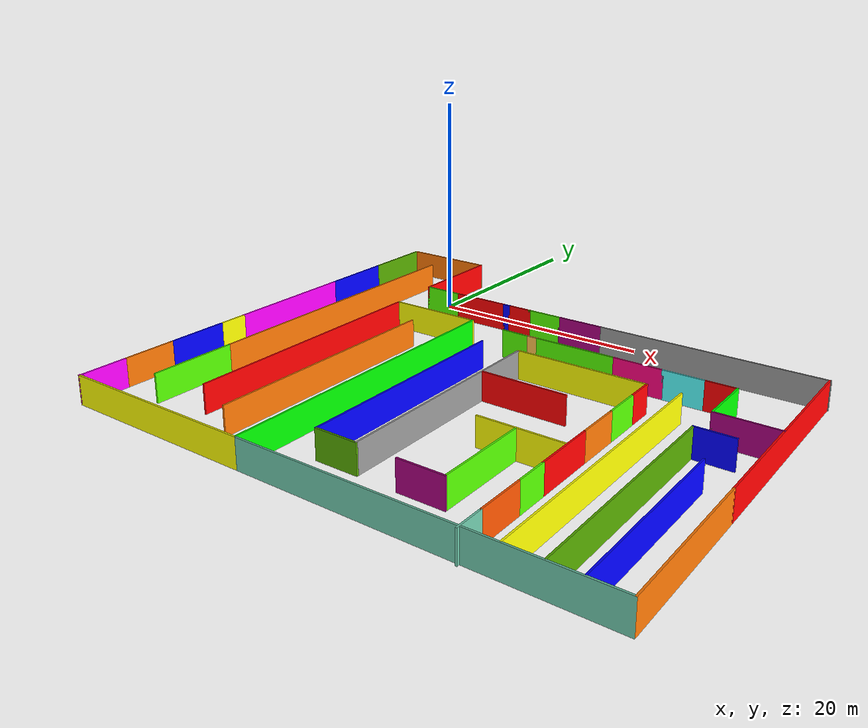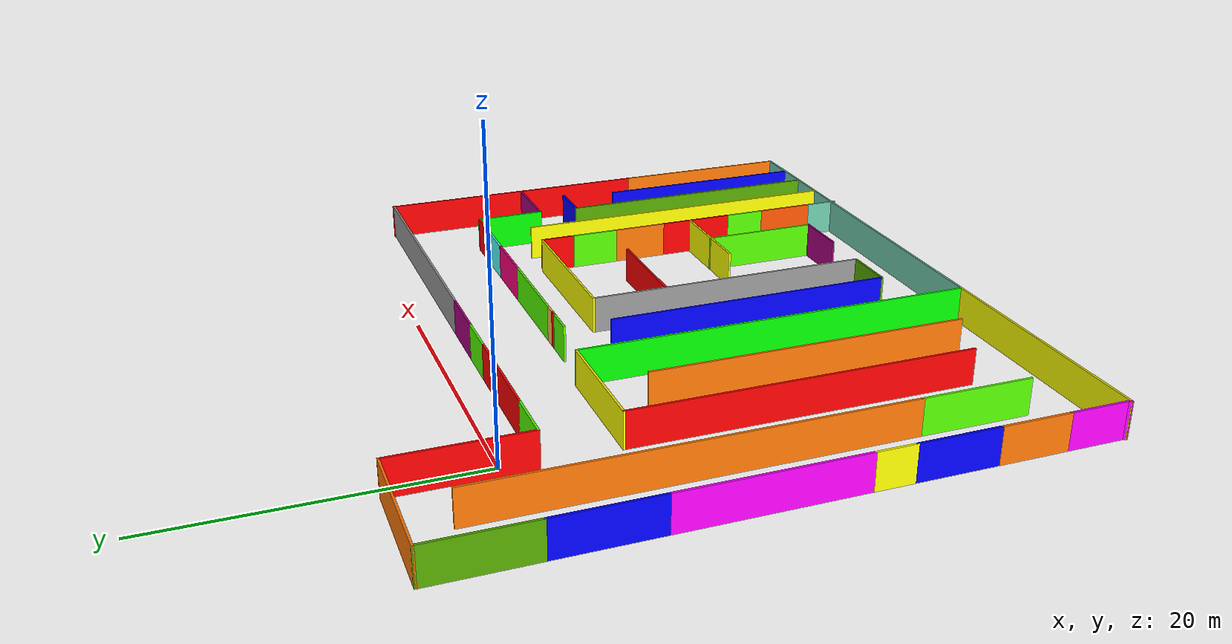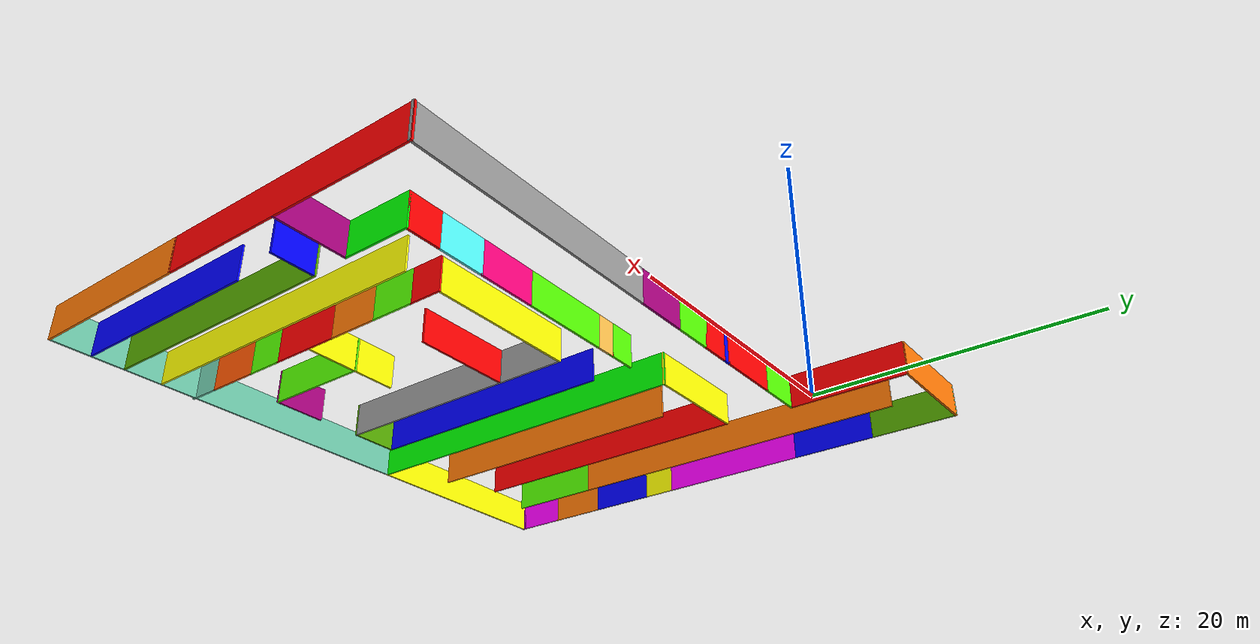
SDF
<?xml version='1.0'?>
<sdf version='1.6'>
  <model name='Indoors_with_RGB_features'>
    <pose frame=''>13.8674 -14.1627 0 0 -0 0</pose>
    <link name='Wall_101'>
      <collision name='Wall_101_Collision'>
        <geometry>
          <box>
            <size>2.5 0.15 2.5</size>
          </box>
        </geometry>
        <pose frame=''>0 0 1.25 0 -0 0</pose>
      </collision>
      <visual name='Wall_101_Visual'>
        <pose frame=''>0 0 1.25 0 -0 0</pose>
        <geometry>
          <box>
            <size>2.5 0.15 2.5</size>
          </box>
        </geometry>
        <material>
          <script>
            <uri>file://media/materials/scripts/gazebo.material</uri>
            <name>Gazebo/Grey</name>
          </script>
          <ambient>1 0 0 1</ambient>
        </material>
      </visual>
      <pose frame=''>12.4319 2.08101 0 0 0 -1.5708</pose>
    </link>
    <link name='Wall_102'>
      <collision name='Wall_102_Collision'>
        <geometry>
          <box>
            <size>3.5 0.15 2.5</size>
          </box>
        </geometry>
        <pose frame=''>0 0 1.25 0 -0 0</pose>
      </collision>
      <visual name='Wall_102_Visual'>
        <pose frame=''>0 0 1.25 0 -0 0</pose>
        <geometry>
          <box>
            <size>3.5 0.15 2.5</size>
          </box>
        </geometry>
        <material>
          <script>
            <uri>file://media/materials/scripts/gazebo.material</uri>
            <name>Gazebo/Grey</name>
          </script>
          <ambient>0.333333 1 0 1</ambient>
        </material>
      </visual>
      <pose frame=''>12.4319 -0.76899 0 0 0 -1.5708</pose>
    </link>
    <link name='Wall_103'>
      <collision name='Wall_103_Collision'>
        <geometry>
          <box>
            <size>4 0.15 2.5</size>
          </box>
        </geometry>
        <pose frame=''>0 0 1.25 0 -0 0</pose>
      </collision>
      <visual name='Wall_103_Visual'>
        <pose frame=''>0 0 1.25 0 -0 0</pose>
        <geometry>
          <box>
            <size>4 0.15 2.5</size>
          </box>
        </geometry>
        <material>
          <script>
            <uri>file://media/materials/scripts/gazebo.material</uri>
            <name>Gazebo/Grey</name>
          </script>
          <ambient>0.996078 0.47451 0.0196078 1</ambient>
        </material>
      </visual>
      <pose frame=''>12.4319 -4.36899 0 0 0 -1.5708</pose>
    </link>
    <link name='Wall_104'>
      <collision name='Wall_104_Collision'>
        <geometry>
          <box>
            <size>5.5 0.15 2.5</size>
          </box>
        </geometry>
        <pose frame=''>0 0 1.25 0 -0 0</pose>
      </collision>
      <visual name='Wall_104_Visual'>
        <pose frame=''>0 0 1.25 0 -0 0</pose>
        <geometry>
          <box>
            <size>5.5 0.15 2.5</size>
          </box>
        </geometry>
        <material>
          <script>
            <uri>file://media/materials/scripts/gazebo.material</uri>
            <name>Gazebo/Grey</name>
          </script>
          <ambient>1 0 0 1</ambient>
        </material>
      </visual>
      <pose frame=''>12.4319 -8.96899 0 0 0 -1.5708</pose>
    </link>
    <link name='Wall_105'>
      <collision name='Wall_105_Collision'>
        <geometry>
          <box>
            <size>3 0.15 2.5</size>
          </box>
        </geometry>
        <pose frame=''>0 0 1.25 0 -0 0</pose>
      </collision>
      <visual name='Wall_105_Visual'>
        <pose frame=''>0 0 1.25 0 -0 0</pose>
        <geometry>
          <box>
            <size>3 0.15 2.5</size>
          </box>
        </geometry>
        <material>
          <script>
            <uri>file://media/materials/scripts/gazebo.material</uri>
            <name>Gazebo/Grey</name>
          </script>
          <ambient>0.333333 1 0 1</ambient>
        </material>
      </visual>
      <pose frame=''>12.4319 -13.069 0 0 0 -1.5708</pose>
    </link>
    <link name='Wall_106'>
      <collision name='Wall_106_Collision'>
        <geometry>
          <box>
            <size>4.25 0.15 2.5</size>
          </box>
        </geometry>
        <pose frame=''>0 0 1.25 0 -0 0</pose>
      </collision>
      <visual name='Wall_106_Visual'>
        <pose frame=''>0 0 1.25 0 -0 0</pose>
        <geometry>
          <box>
            <size>4.25 0.15 2.5</size>
          </box>
        </geometry>
        <material>
          <script>
            <uri>file://media/materials/scripts/gazebo.material</uri>
            <name>Gazebo/Grey</name>
          </script>
          <ambient>1 0.333333 0 1</ambient>
        </material>
      </visual>
      <pose frame=''>12.4319 -16.544 0 0 0 -1.5708</pose>
    </link>
    <link name='Wall_107'>
      <collision name='Wall_107_Collision'>
        <geometry>
          <box>
            <size>2.5 0.15 2.5</size>
          </box>
        </geometry>
        <pose frame=''>0 0 1.25 0 -0 0</pose>
      </collision>
      <visual name='Wall_107_Visual'>
        <pose frame=''>0 0 1.25 0 -0 0</pose>
        <geometry>
          <box>
            <size>2.5 0.15 2.5</size>
          </box>
        </geometry>
        <material>
          <script>
            <uri>file://media/materials/scripts/gazebo.material</uri>
            <name>Gazebo/Grey</name>
          </script>
          <ambient>0.435294 0.796078 0.67451 1</ambient>
        </material>
      </visual>
      <pose frame=''>12.4319 -19.769 0 0 0 -1.5708</pose>
    </link>
    <link name='Wall_25'>
      <collision name='Wall_25_Collision'>
        <geometry>
          <box>
            <size>19.5 0.15 2.5</size>
          </box>
        </geometry>
        <pose frame=''>0 0 1.25 0 -0 0</pose>
      </collision>
      <visual name='Wall_25_Visual'>
        <pose frame=''>0 0 1.25 0 -0 0</pose>
        <geometry>
          <box>
            <size>19.5 0.15 2.5</size>
          </box>
        </geometry>
        <material>
          <script>
            <uri>file://media/materials/scripts/gazebo.material</uri>
            <name>Gazebo/Grey</name>
          </script>
          <ambient>1 1 1 1</ambient>
        </material>
      </visual>
      <pose frame=''>13.6831 12.0192 0 0 -0 0</pose>
    </link>
    <link name='Wall_26'>
      <collision name='Wall_26_Collision'>
        <geometry>
          <box>
            <size>19.8553 0.15 2.5</size>
          </box>
        </geometry>
        <pose frame=''>0 0 1.25 0 -0 0</pose>
      </collision>
      <visual name='Wall_26_Visual'>
        <pose frame=''>0 0 1.25 0 -0 0</pose>
        <geometry>
          <box>
            <size>19.8553 0.15 2.5</size>
          </box>
        </geometry>
        <material>
          <script>
            <uri>file://media/materials/scripts/gazebo.material</uri>
            <name>Gazebo/Grey</name>
          </script>
          <ambient>1 0 0 1</ambient>
        </material>
      </visual>
      <pose frame=''>23.3318 2.21922 0 0 0 -1.56813</pose>
    </link>
    <link name='Wall_27'>
      <collision name='Wall_27_Collision'>
        <geometry>
          <box>
            <size>13.25 0.15 2.5</size>
          </box>
        </geometry>
        <pose frame=''>0 0 1.25 0 -0 0</pose>
      </collision>
      <visual name='Wall_27_Visual'>
        <pose frame=''>0 0 1.25 0 -0 0</pose>
        <geometry>
          <box>
            <size>13.25 0.15 2.5</size>
          </box>
        </geometry>
        <material>
          <script>
            <uri>file://media/materials/scripts/gazebo.material</uri>
            <name>Gazebo/Grey</name>
          </script>
          <ambient>0.996078 0.47451 0.0196078 1</ambient>
        </material>
      </visual>
      <pose frame=''>23.3581 -14.1834 0 0 0 -1.5708</pose>
    </link>
    <link name='Wall_28'>
      <collision name='Wall_28_Collision'>
        <geometry>
          <box>
            <size>29.5 0.15 2.5</size>
          </box>
        </geometry>
        <pose frame=''>0 0 1.25 0 -0 0</pose>
      </collision>
      <visual name='Wall_28_Visual'>
        <pose frame=''>0 0 1.25 0 -0 0</pose>
        <geometry>
          <box>
            <size>29.5 0.15 2.5</size>
          </box>
        </geometry>
        <material>
          <script>
            <uri>file://media/materials/scripts/gazebo.material</uri>
            <name>Gazebo/Grey</name>
          </script>
          <ambient>0.435294 0.796078 0.67451 1</ambient>
        </material>
      </visual>
      <pose frame=''>8.68306 -20.7334 0 0 -0 3.14159</pose>
    </link>
    <link name='Wall_29'>
      <collision name='Wall_29_Collision'>
        <geometry>
          <box>
            <size>27.75 0.15 2.5</size>
          </box>
        </geometry>
        <pose frame=''>0 0 1.25 0 -0 0</pose>
      </collision>
      <visual name='Wall_29_Visual'>
        <pose frame=''>0 0 1.25 0 -0 0</pose>
        <geometry>
          <box>
            <size>27.75 0.15 2.5</size>
          </box>
        </geometry>
        <material>
          <script>
            <uri>file://media/materials/scripts/gazebo.material</uri>
            <name>Gazebo/Grey</name>
          </script>
          <ambient>0 1 0 1</ambient>
        </material>
      </visual>
      <pose frame=''>-5.99194 -6.93338 0 0 -0 1.5708</pose>
    </link>
    <link name='Wall_31'>
      <collision name='Wall_31_Collision'>
        <geometry>
          <box>
            <size>17.5 0.15 2.5</size>
          </box>
        </geometry>
        <pose frame=''>0 0 1.25 0 -0 0</pose>
      </collision>
      <visual name='Wall_31_Visual'>
        <pose frame=''>0 0 1.25 0 -0 0</pose>
        <geometry>
          <box>
            <size>17.5 0.15 2.5</size>
          </box>
        </geometry>
        <material>
          <script>
            <uri>file://media/materials/scripts/gazebo.material</uri>
            <name>Gazebo/Grey</name>
          </script>
          <ambient>1 1 0 1</ambient>
        </material>
      </visual>
      <pose frame=''>-14.6669 -20.7334 0 0 -0 3.14159</pose>
    </link>
    <link name='Wall_33'>
      <collision name='Wall_33_Collision'>
        <geometry>
          <box>
            <size>8.69202 0.15 2.5</size>
          </box>
        </geometry>
        <pose frame=''>0 0 1.25 0 -0 0</pose>
      </collision>
      <visual name='Wall_33_Visual'>
        <pose frame=''>0 0 1.25 0 -0 0</pose>
        <geometry>
          <box>
            <size>8.69202 0.15 2.5</size>
          </box>
        </geometry>
        <material>
          <script>
            <uri>file://media/materials/scripts/gazebo.material</uri>
            <name>Gazebo/Grey</name>
          </script>
          <ambient>0.996078 0.47451 0.0196078 1</ambient>
        </material>
      </visual>
      <pose frame=''>-19.0128 20.905 0 0 0 -0.008979</pose>
    </link>
    <link name='Wall_34'>
      <collision name='Wall_34_Collision'>
        <geometry>
          <box>
            <size>9 0.15 2.5</size>
          </box>
        </geometry>
        <pose frame=''>0 0 1.25 0 -0 0</pose>
      </collision>
      <visual name='Wall_34_Visual'>
        <pose frame=''>0 0 1.25 0 -0 0</pose>
        <geometry>
          <box>
            <size>9 0.15 2.5</size>
          </box>
        </geometry>
        <material>
          <script>
            <uri>file://media/materials/scripts/gazebo.material</uri>
            <name>Gazebo/Grey</name>
          </script>
          <ambient>1 0 0 1</ambient>
        </material>
      </visual>
      <pose frame=''>-14.7419 16.4416 0 0 0 -1.5708</pose>
    </link>
    <link name='Wall_38'>
      <collision name='Wall_38_Collision'>
        <geometry>
          <box>
            <size>27.75 0.15 2.5</size>
          </box>
        </geometry>
        <pose frame=''>0 0 1.25 0 -0 0</pose>
      </collision>
      <visual name='Wall_38_Visual'>
        <pose frame=''>0 0 1.25 0 -0 0</pose>
        <geometry>
          <box>
            <size>27.75 0.15 2.5</size>
          </box>
        </geometry>
        <material>
          <script>
            <uri>file://media/materials/scripts/gazebo.material</uri>
            <name>Gazebo/Grey</name>
          </script>
          <ambient>0.996078 0.47451 0.0196078 1</ambient>
        </material>
      </visual>
      <pose frame=''>-18.8987 4.04046 0 0 0 -1.5708</pose>
    </link>
    <link name='Wall_40'>
      <collision name='Wall_40_Collision'>
        <geometry>
          <box>
            <size>8.5 0.15 2.5</size>
          </box>
        </geometry>
        <pose frame=''>0 0 1.25 0 -0 0</pose>
      </collision>
      <visual name='Wall_40_Visual'>
        <pose frame=''>0 0 1.25 0 -0 0</pose>
        <geometry>
          <box>
            <size>8.5 0.15 2.5</size>
          </box>
        </geometry>
        <material>
          <script>
            <uri>file://media/materials/scripts/gazebo.material</uri>
            <name>Gazebo/Grey</name>
          </script>
          <ambient>1 1 0 1</ambient>
        </material>
      </visual>
      <pose frame=''>-10.1669 6.86662 0 0 -0 3.14159</pose>
    </link>
    <link name='Wall_42'>
      <collision name='Wall_42_Collision'>
        <geometry>
          <box>
            <size>23.25 0.15 2.5</size>
          </box>
        </geometry>
        <pose frame=''>0 0 1.25 0 -0 0</pose>
      </collision>
      <visual name='Wall_42_Visual'>
        <pose frame=''>0 0 1.25 0 -0 0</pose>
        <geometry>
          <box>
            <size>23.25 0.15 2.5</size>
          </box>
        </geometry>
        <material>
          <script>
            <uri>file://media/materials/scripts/gazebo.material</uri>
            <name>Gazebo/Grey</name>
          </script>
          <ambient>1 0 0 1</ambient>
        </material>
      </visual>
      <pose frame=''>-14.3419 -4.68338 0 0 0 -1.5708</pose>
    </link>
    <link name='Wall_44'>
      <collision name='Wall_44_Collision'>
        <geometry>
          <box>
            <size>21.75 0.15 2.5</size>
          </box>
        </geometry>
        <pose frame=''>0 0 1.25 0 -0 0</pose>
      </collision>
      <visual name='Wall_44_Visual'>
        <pose frame=''>0 0 1.25 0 -0 0</pose>
        <geometry>
          <box>
            <size>21.75 0.15 2.5</size>
          </box>
        </geometry>
        <material>
          <script>
            <uri>file://media/materials/scripts/gazebo.material</uri>
            <name>Gazebo/Grey</name>
          </script>
          <ambient>0.996078 0.47451 0.0196078 1</ambient>
        </material>
      </visual>
      <pose frame=''>-10.3127 -7.06583 0 0 0 -1.5708</pose>
    </link>
    <link name='Wall_46'>
      <collision name='Wall_46_Collision'>
        <geometry>
          <box>
            <size>7.5 0.15 2.5</size>
          </box>
        </geometry>
        <pose frame=''>0 0 1.25 0 -0 0</pose>
      </collision>
      <visual name='Wall_46_Visual'>
        <pose frame=''>0 0 1.25 0 -0 0</pose>
        <geometry>
          <box>
            <size>7.5 0.15 2.5</size>
          </box>
        </geometry>
        <material>
          <script>
            <uri>file://media/materials/scripts/gazebo.material</uri>
            <name>Gazebo/Grey</name>
          </script>
          <ambient>0.333333 1 0 1</ambient>
        </material>
      </visual>
      <pose frame=''>-18.8987 -13.4345 0 0 0 -1.5708</pose>
    </link>
    <link name='Wall_49'>
      <collision name='Wall_49_Collision'>
        <geometry>
          <box>
            <size>5 0.15 2.5</size>
          </box>
        </geometry>
        <pose frame=''>0 0 1.25 0 -0 0</pose>
      </collision>
      <visual name='Wall_49_Visual'>
        <pose frame=''>0 0 1.25 0 -0 0</pose>
        <geometry>
          <box>
            <size>5 0.15 2.5</size>
          </box>
        </geometry>
        <material>
          <script>
            <uri>file://media/materials/scripts/gazebo.material</uri>
            <name>Gazebo/Grey</name>
          </script>
          <ambient>0 1 0 1</ambient>
        </material>
      </visual>
      <pose frame=''>18.2294 4.06483 0 0 0 -1.5708</pose>
    </link>
    <link name='Wall_50'>
      <collision name='Wall_50_Collision'>
        <geometry>
          <box>
            <size>5.25 0.15 2.5</size>
          </box>
        </geometry>
        <pose frame=''>0 0 1.25 0 -0 0</pose>
      </collision>
      <visual name='Wall_50_Visual'>
        <pose frame=''>0 0 1.25 0 -0 0</pose>
        <geometry>
          <box>
            <size>5.25 0.15 2.5</size>
          </box>
        </geometry>
        <material>
          <script>
            <uri>file://media/materials/scripts/gazebo.material</uri>
            <name>Gazebo/Grey</name>
          </script>
          <ambient>0.666667 0 0.498039 1</ambient>
        </material>
      </visual>
      <pose frame=''>20.7794 1.63983 0 0 -0 0</pose>
    </link>
    <link name='Wall_53'>
      <collision name='Wall_53_Collision'>
        <geometry>
          <box>
            <size>11.5 0.15 2.5</size>
          </box>
        </geometry>
        <pose frame=''>0 0 1.25 0 -0 0</pose>
      </collision>
      <visual name='Wall_53_Visual'>
        <pose frame=''>0 0 1.25 0 -0 0</pose>
        <geometry>
          <box>
            <size>11.5 0.15 2.5</size>
          </box>
        </geometry>
        <material>
          <script>
            <uri>file://media/materials/scripts/gazebo.material</uri>
            <name>Gazebo/Grey</name>
          </script>
          <ambient>1 1 0 1</ambient>
        </material>
      </visual>
      <pose frame=''>6.75688 3.25601 0 0 -0 3.14159</pose>
    </link>
    <link name='Wall_54'>
      <collision name='Wall_54_Collision'>
        <geometry>
          <box>
            <size>20 0.15 2.5</size>
          </box>
        </geometry>
        <pose frame=''>0 0 1.25 0 -0 0</pose>
      </collision>
      <visual name='Wall_54_Visual'>
        <pose frame=''>0 0 1.25 0 -0 0</pose>
        <geometry>
          <box>
            <size>20 0.15 2.5</size>
          </box>
        </geometry>
        <material>
          <script>
            <uri>file://media/materials/scripts/gazebo.material</uri>
            <name>Gazebo/Grey</name>
          </script>
          <ambient>1 1 1 1</ambient>
        </material>
      </visual>
      <pose frame=''>1.08188 -6.66899 0 0 0 -1.5708</pose>
    </link>
    <link name='Wall_55'>
      <collision name='Wall_55_Collision'>
        <geometry>
          <box>
            <size>3.75 0.15 2.5</size>
          </box>
        </geometry>
        <pose frame=''>0 0 1.25 0 -0 0</pose>
      </collision>
      <visual name='Wall_55_Visual'>
        <pose frame=''>0 0 1.25 0 -0 0</pose>
        <geometry>
          <box>
            <size>3.75 0.15 2.5</size>
          </box>
        </geometry>
        <material>
          <script>
            <uri>file://media/materials/scripts/gazebo.material</uri>
            <name>Gazebo/Grey</name>
          </script>
          <ambient>0.333333 0.666667 0 1</ambient>
        </material>
      </visual>
      <pose frame=''>-0.718117 -16.594 0 0 -0 3.14159</pose>
    </link>
    <link name='Wall_56'>
      <collision name='Wall_56_Collision'>
        <geometry>
          <box>
            <size>20 0.15 2.5</size>
          </box>
        </geometry>
        <pose frame=''>0 0 1.25 0 -0 0</pose>
      </collision>
      <visual name='Wall_56_Visual'>
        <pose frame=''>0 0 1.25 0 -0 0</pose>
        <geometry>
          <box>
            <size>20 0.15 2.5</size>
          </box>
        </geometry>
        <material>
          <script>
            <uri>file://media/materials/scripts/gazebo.material</uri>
            <name>Gazebo/Grey</name>
          </script>
          <ambient>0 0 1 1</ambient>
        </material>
      </visual>
      <pose frame=''>-2.51812 -6.66899 0 0 -0 1.5708</pose>
    </link>
    <link name='Wall_58'>
      <collision name='Wall_58_Collision'>
        <geometry>
          <box>
            <size>7.5 0.15 2.5</size>
          </box>
        </geometry>
        <pose frame=''>0 0 1.25 0 -0 0</pose>
      </collision>
      <visual name='Wall_58_Visual'>
        <pose frame=''>0 0 1.25 0 -0 0</pose>
        <geometry>
          <box>
            <size>7.5 0.15 2.5</size>
          </box>
        </geometry>
        <material>
          <script>
            <uri>file://media/materials/scripts/gazebo.material</uri>
            <name>Gazebo/Grey</name>
          </script>
          <ambient>1 0 0 1</ambient>
        </material>
      </visual>
      <pose frame=''>4.83082 -1.98534 0 0 -0 0</pose>
    </link>
    <link name='Wall_61'>
      <collision name='Wall_61_Collision'>
        <geometry>
          <box>
            <size>7.25 0.15 2.5</size>
          </box>
        </geometry>
        <pose frame=''>0 0 1.25 0 -0 0</pose>
      </collision>
      <visual name='Wall_61_Visual'>
        <pose frame=''>0 0 1.25 0 -0 0</pose>
        <geometry>
          <box>
            <size>7.25 0.15 2.5</size>
          </box>
        </geometry>
        <material>
          <script>
            <uri>file://media/materials/scripts/gazebo.material</uri>
            <name>Gazebo/Grey</name>
          </script>
          <ambient>1 1 0 1</ambient>
        </material>
      </visual>
      <pose frame=''>8.75327 -8.5764 0 0 -0 3.14159</pose>
    </link>
    <link name='Wall_63'>
      <collision name='Wall_63_Collision'>
        <geometry>
          <box>
            <size>8.25 0.15 2.5</size>
          </box>
        </geometry>
        <pose frame=''>0 0 1.25 0 -0 0</pose>
      </collision>
      <visual name='Wall_63_Visual'>
        <pose frame=''>0 0 1.25 0 -0 0</pose>
        <geometry>
          <box>
            <size>8.25 0.15 2.5</size>
          </box>
        </geometry>
        <material>
          <script>
            <uri>file://media/materials/scripts/gazebo.material</uri>
            <name>Gazebo/Grey</name>
          </script>
          <ambient>0.333333 1 0 1</ambient>
        </material>
      </visual>
      <pose frame=''>8.44334 -12.6029 0 0 0 -1.5708</pose>
    </link>
    <link name='Wall_65'>
      <collision name='Wall_65_Collision'>
        <geometry>
          <box>
            <size>24 0.15 2.5</size>
          </box>
        </geometry>
        <pose frame=''>0 0 1.25 0 -0 0</pose>
      </collision>
      <visual name='Wall_65_Visual'>
        <pose frame=''>0 0 1.25 0 -0 0</pose>
        <geometry>
          <box>
            <size>24 0.15 2.5</size>
          </box>
        </geometry>
        <material>
          <script>
            <uri>file://media/materials/scripts/gazebo.material</uri>
            <name>Gazebo/Grey</name>
          </script>
          <ambient>1 1 0 1</ambient>
        </material>
      </visual>
      <pose frame=''>15.2031 -8.69435 0 0 -0 1.5708</pose>
    </link>
    <link name='Wall_67'>
      <collision name='Wall_67_Collision'>
        <geometry>
          <box>
            <size>4 0.15 2.5</size>
          </box>
        </geometry>
        <pose frame=''>0 0 1.25 0 -0 0</pose>
      </collision>
      <visual name='Wall_67_Visual'>
        <pose frame=''>0 0 1.25 0 -0 0</pose>
        <geometry>
          <box>
            <size>4 0.15 2.5</size>
          </box>
        </geometry>
        <material>
          <script>
            <uri>file://media/materials/scripts/gazebo.material</uri>
            <name>Gazebo/Grey</name>
          </script>
          <ambient>0.666667 0 0.498039 1</ambient>
        </material>
      </visual>
      <pose frame=''>6.51834 -16.6529 0 0 -0 3.14159</pose>
    </link>
    <link name='Wall_69'>
      <collision name='Wall_69_Collision'>
        <geometry>
          <box>
            <size>19.5 0.15 2.5</size>
          </box>
        </geometry>
        <pose frame=''>0 0 1.25 0 -0 0</pose>
      </collision>
      <visual name='Wall_69_Visual'>
        <pose frame=''>0 0 1.25 0 -0 0</pose>
        <geometry>
          <box>
            <size>19.5 0.15 2.5</size>
          </box>
        </geometry>
        <material>
          <script>
            <uri>file://media/materials/scripts/gazebo.material</uri>
            <name>Gazebo/Grey</name>
          </script>
          <ambient>0.333333 0.666667 0 1</ambient>
        </material>
      </visual>
      <pose frame=''>18.0362 -10.9443 0 0 -0 1.5708</pose>
    </link>
    <link name='Wall_70'>
      <collision name='Wall_70_Collision'>
        <geometry>
          <box>
            <size>3.25 0.15 2.5</size>
          </box>
        </geometry>
        <pose frame=''>0 0 1.25 0 -0 0</pose>
      </collision>
      <visual name='Wall_70_Visual'>
        <pose frame=''>0 0 1.25 0 -0 0</pose>
        <geometry>
          <box>
            <size>3.25 0.15 2.5</size>
          </box>
        </geometry>
        <material>
          <script>
            <uri>file://media/materials/scripts/gazebo.material</uri>
            <name>Gazebo/Grey</name>
          </script>
          <ambient>0 0 1 1</ambient>
        </material>
      </visual>
      <pose frame=''>19.5862 -1.26935 0 0 -0 0</pose>
    </link>
    <link name='Wall_72'>
      <collision name='Wall_72_Collision'>
        <geometry>
          <box>
            <size>15.5 0.15 2.5</size>
          </box>
        </geometry>
        <pose frame=''>0 0 1.25 0 -0 0</pose>
      </collision>
      <visual name='Wall_72_Visual'>
        <pose frame=''>0 0 1.25 0 -0 0</pose>
        <geometry>
          <box>
            <size>15.5 0.15 2.5</size>
          </box>
        </geometry>
        <material>
          <script>
            <uri>file://media/materials/scripts/gazebo.material</uri>
            <name>Gazebo/Grey</name>
          </script>
          <ambient>0 0 1 1</ambient>
        </material>
      </visual>
      <pose frame=''>20.4646 -12.9443 0 0 -0 1.5708</pose>
    </link>
    <link name='Wall_74'>
      <collision name='Wall_74_Collision'>
        <geometry>
          <box>
            <size>2.5 0.15 2.5</size>
          </box>
        </geometry>
        <pose frame=''>0 0 1.25 0 -0 0</pose>
      </collision>
      <visual name='Wall_74_Visual'>
        <pose frame=''>0 0 1.25 0 -0 0</pose>
        <geometry>
          <box>
            <size>2.5 0.15 2.5</size>
          </box>
        </geometry>
        <material>
          <script>
            <uri>file://media/materials/scripts/gazebo.material</uri>
            <name>Gazebo/Grey</name>
          </script>
          <ambient>0.333333 1 0 1</ambient>
        </material>
      </visual>
      <pose frame=''>-1.29556 6.48983 0 0 -0 3.14159</pose>
    </link>
    <link name='Wall_76'>
      <collision name='Wall_76_Collision'>
        <geometry>
          <box>
            <size>6.75 0.15 2.5</size>
          </box>
        </geometry>
        <pose frame=''>0 0 1.25 0 -0 0</pose>
      </collision>
      <visual name='Wall_76_Visual'>
        <pose frame=''>0 0 1.25 0 -0 0</pose>
        <geometry>
          <box>
            <size>6.75 0.15 2.5</size>
          </box>
        </geometry>
        <material>
          <script>
            <uri>file://media/materials/scripts/gazebo.material</uri>
            <name>Gazebo/Grey</name>
          </script>
          <ambient>0.333333 0.666667 0 1</ambient>
        </material>
      </visual>
      <pose frame=''>-23.2836 17.6433 0 0 0 -1.5708</pose>
    </link>
    <link name='Wall_77'>
      <collision name='Wall_77_Collision'>
        <geometry>
          <box>
            <size>6.75 0.15 2.5</size>
          </box>
        </geometry>
        <pose frame=''>0 0 1.25 0 -0 0</pose>
      </collision>
      <visual name='Wall_77_Visual'>
        <pose frame=''>0 0 1.25 0 -0 0</pose>
        <geometry>
          <box>
            <size>6.75 0.15 2.5</size>
          </box>
        </geometry>
        <material>
          <script>
            <uri>file://media/materials/scripts/gazebo.material</uri>
            <name>Gazebo/Grey</name>
          </script>
          <ambient>0 0 1 1</ambient>
        </material>
      </visual>
      <pose frame=''>-23.2836 11.0433 0 0 0 -1.5708</pose>
    </link>
    <link name='Wall_78'>
      <collision name='Wall_78_Collision'>
        <geometry>
          <box>
            <size>12 0.15 2.5</size>
          </box>
        </geometry>
        <pose frame=''>0 0 1.25 0 -0 0</pose>
      </collision>
      <visual name='Wall_78_Visual'>
        <pose frame=''>0 0 1.25 0 -0 0</pose>
        <geometry>
          <box>
            <size>12 0.15 2.5</size>
          </box>
        </geometry>
        <material>
          <script>
            <uri>file://media/materials/scripts/gazebo.material</uri>
            <name>Gazebo/Grey</name>
          </script>
          <ambient>1 0 1 1</ambient>
        </material>
      </visual>
      <pose frame=''>-23.2836 1.81832 0 0 0 -1.5708</pose>
    </link>
    <link name='Wall_79'>
      <collision name='Wall_79_Collision'>
        <geometry>
          <box>
            <size>2.75 0.15 2.5</size>
          </box>
        </geometry>
        <pose frame=''>0 0 1.25 0 -0 0</pose>
      </collision>
      <visual name='Wall_79_Visual'>
        <pose frame=''>0 0 1.25 0 -0 0</pose>
        <geometry>
          <box>
            <size>2.75 0.15 2.5</size>
          </box>
        </geometry>
        <material>
          <script>
            <uri>file://media/materials/scripts/gazebo.material</uri>
            <name>Gazebo/Grey</name>
          </script>
          <ambient>1 1 0 1</ambient>
        </material>
      </visual>
      <pose frame=''>-23.2836 -5.40668 0 0 0 -1.5708</pose>
    </link>
    <link name='Wall_80'>
      <collision name='Wall_80_Collision'>
        <geometry>
          <box>
            <size>5.5 0.15 2.5</size>
          </box>
        </geometry>
        <pose frame=''>0 0 1.25 0 -0 0</pose>
      </collision>
      <visual name='Wall_80_Visual'>
        <pose frame=''>0 0 1.25 0 -0 0</pose>
        <geometry>
          <box>
            <size>5.5 0.15 2.5</size>
          </box>
        </geometry>
        <material>
          <script>
            <uri>file://media/materials/scripts/gazebo.material</uri>
            <name>Gazebo/Grey</name>
          </script>
          <ambient>0 0 1 1</ambient>
        </material>
      </visual>
      <pose frame=''>-23.2836 -9.38168 0 0 0 -1.5708</pose>
    </link>
    <link name='Wall_81'>
      <collision name='Wall_81_Collision'>
        <geometry>
          <box>
            <size>4.75 0.15 2.5</size>
          </box>
        </geometry>
        <pose frame=''>0 0 1.25 0 -0 0</pose>
      </collision>
      <visual name='Wall_81_Visual'>
        <pose frame=''>0 0 1.25 0 -0 0</pose>
        <geometry>
          <box>
            <size>4.75 0.15 2.5</size>
          </box>
        </geometry>
        <material>
          <script>
            <uri>file://media/materials/scripts/gazebo.material</uri>
            <name>Gazebo/Grey</name>
          </script>
          <ambient>0.996078 0.47451 0.0196078 1</ambient>
        </material>
      </visual>
      <pose frame=''>-23.2836 -14.3567 0 0 0 -1.5708</pose>
    </link>
    <link name='Wall_82'>
      <collision name='Wall_82_Collision'>
        <geometry>
          <box>
            <size>4 0.15 2.5</size>
          </box>
        </geometry>
        <pose frame=''>0 0 1.25 0 -0 0</pose>
      </collision>
      <visual name='Wall_82_Visual'>
        <pose frame=''>0 0 1.25 0 -0 0</pose>
        <geometry>
          <box>
            <size>4 0.15 2.5</size>
          </box>
        </geometry>
        <material>
          <script>
            <uri>file://media/materials/scripts/gazebo.material</uri>
            <name>Gazebo/Grey</name>
          </script>
          <ambient>1 0 1 1</ambient>
        </material>
      </visual>
      <pose frame=''>-23.2836 -18.5817 0 0 0 -1.5708</pose>
    </link>
    <link name='Wall_83'>
      <collision name='Wall_83_Collision'>
        <geometry>
          <box>
            <size>0.384082 0.15 2.5</size>
          </box>
        </geometry>
        <pose frame=''>0 0 1.25 0 -0 0</pose>
      </collision>
      <visual name='Wall_83_Visual'>
        <pose frame=''>0 0 1.25 0 -0 0</pose>
        <geometry>
          <box>
            <size>0.384082 0.15 2.5</size>
          </box>
        </geometry>
        <material>
          <script>
            <uri>file://media/materials/scripts/gazebo.material</uri>
            <name>Gazebo/Grey</name>
          </script>
          <ambient>1 0 1 1</ambient>
        </material>
      </visual>
      <pose frame=''>-23.3128 -20.62 0 0 0 -1.82261</pose>
    </link>
    <link name='Wall_85'>
      <collision name='Wall_85_Collision'>
        <geometry>
          <box>
            <size>3.75 0.15 2.5</size>
          </box>
        </geometry>
        <pose frame=''>0 0 1.25 0 -0 0</pose>
      </collision>
      <visual name='Wall_85_Visual'>
        <pose frame=''>0 0 1.25 0 -0 0</pose>
        <geometry>
          <box>
            <size>3.75 0.15 2.5</size>
          </box>
        </geometry>
        <material>
          <script>
            <uri>file://media/materials/scripts/gazebo.material</uri>
            <name>Gazebo/Grey</name>
          </script>
          <ambient>0.333333 1 0 1</ambient>
        </material>
      </visual>
      <pose frame=''>-12.9419 12.0166 0 0 -0 0</pose>
    </link>
    <link name='Wall_86'>
      <collision name='Wall_86_Collision'>
        <geometry>
          <box>
            <size>5.25 0.15 2.5</size>
          </box>
        </geometry>
        <pose frame=''>0 0 1.25 0 -0 0</pose>
      </collision>
      <visual name='Wall_86_Visual'>
        <pose frame=''>0 0 1.25 0 -0 0</pose>
        <geometry>
          <box>
            <size>5.25 0.15 2.5</size>
          </box>
        </geometry>
        <material>
          <script>
            <uri>file://media/materials/scripts/gazebo.material</uri>
            <name>Gazebo/Grey</name>
          </script>
          <ambient>1 0 0 1</ambient>
        </material>
      </visual>
      <pose frame=''>-8.59194 12.0166 0 0 -0 0</pose>
    </link>
    <link name='Wall_87'>
      <collision name='Wall_87_Collision'>
        <geometry>
          <box>
            <size>0.75 0.15 2.5</size>
          </box>
        </geometry>
        <pose frame=''>0 0 1.25 0 -0 0</pose>
      </collision>
      <visual name='Wall_87_Visual'>
        <pose frame=''>0 0 1.25 0 -0 0</pose>
        <geometry>
          <box>
            <size>0.75 0.15 2.5</size>
          </box>
        </geometry>
        <material>
          <script>
            <uri>file://media/materials/scripts/gazebo.material</uri>
            <name>Gazebo/Grey</name>
          </script>
          <ambient>0 0 1 1</ambient>
        </material>
      </visual>
      <pose frame=''>-5.74194 12.0166 0 0 -0 0</pose>
    </link>
    <link name='Wall_88'>
      <collision name='Wall_88_Collision'>
        <geometry>
          <box>
            <size>2.33994 0.15 2.5</size>
          </box>
        </geometry>
        <pose frame=''>0 0 1.25 0 -0 0</pose>
      </collision>
      <visual name='Wall_88_Visual'>
        <pose frame=''>0 0 1.25 0 -0 0</pose>
        <geometry>
          <box>
            <size>2.33994 0.15 2.5</size>
          </box>
        </geometry>
        <material>
          <script>
            <uri>file://media/materials/scripts/gazebo.material</uri>
            <name>Gazebo/Grey</name>
          </script>
          <ambient>1 0 0 1</ambient>
        </material>
      </visual>
      <pose frame=''>-4.34697 12.0166 0 0 -0 0</pose>
    </link>
    <link name='Wall_89'>
      <collision name='Wall_89_Collision'>
        <geometry>
          <box>
            <size>3.25 0.15 2.5</size>
          </box>
        </geometry>
        <pose frame=''>0 0 1.25 0 -0 0</pose>
      </collision>
      <visual name='Wall_89_Visual'>
        <pose frame=''>0 0 1.25 0 -0 0</pose>
        <geometry>
          <box>
            <size>3.25 0.15 2.5</size>
          </box>
        </geometry>
        <material>
          <script>
            <uri>file://media/materials/scripts/gazebo.material</uri>
            <name>Gazebo/Grey</name>
          </script>
          <ambient>0.333333 1 0 1</ambient>
        </material>
      </visual>
      <pose frame=''>-1.74697 12.0166 0 0 -0 0</pose>
    </link>
    <link name='Wall_90'>
      <collision name='Wall_90_Collision'>
        <geometry>
          <box>
            <size>4.16006 0.15 2.5</size>
          </box>
        </geometry>
        <pose frame=''>0 0 1.25 0 -0 0</pose>
      </collision>
      <visual name='Wall_90_Visual'>
        <pose frame=''>0 0 1.25 0 -0 0</pose>
        <geometry>
          <box>
            <size>4.16006 0.15 2.5</size>
          </box>
        </geometry>
        <material>
          <script>
            <uri>file://media/materials/scripts/gazebo.material</uri>
            <name>Gazebo/Grey</name>
          </script>
          <ambient>0.666667 0 0.498039 1</ambient>
        </material>
      </visual>
      <pose frame=''>1.85303 12.0166 0 0 -0 0</pose>
    </link>
    <link name='Wall_94'>
      <collision name='Wall_94_Collision'>
        <geometry>
          <box>
            <size>0.465506 0.15 2.5</size>
          </box>
        </geometry>
        <pose frame=''>0 0 1.25 0 -0 0</pose>
      </collision>
      <visual name='Wall_94_Visual'>
        <pose frame=''>0 0 1.25 0 -0 0</pose>
        <geometry>
          <box>
            <size>0.465506 0.15 2.5</size>
          </box>
        </geometry>
        <material>
          <script>
            <uri>file://media/materials/scripts/gazebo.material</uri>
            <name>Gazebo/Grey</name>
          </script>
          <ambient>1 0 0 1</ambient>
        </material>
      </visual>
      <pose frame=''>-0.278311 6.48983 0 0 -0 3.14159</pose>
    </link>
    <link name='Wall_95'>
      <collision name='Wall_95_Collision'>
        <geometry>
          <box>
            <size>1.5 0.15 2.5</size>
          </box>
        </geometry>
        <pose frame=''>0 0 1.25 0 -0 0</pose>
      </collision>
      <visual name='Wall_95_Visual'>
        <pose frame=''>0 0 1.25 0 -0 0</pose>
        <geometry>
          <box>
            <size>1.5 0.15 2.5</size>
          </box>
        </geometry>
        <material>
          <script>
            <uri>file://media/materials/scripts/gazebo.material</uri>
            <name>Gazebo/Grey</name>
          </script>
          <ambient>1 0.764706 0.305882 1</ambient>
        </material>
      </visual>
      <pose frame=''>0.284675 6.48983 0 0 -0 0</pose>
    </link>
    <link name='Wall_96'>
      <collision name='Wall_96_Collision'>
        <geometry>
          <box>
            <size>7.16551 0.15 2.5</size>
          </box>
        </geometry>
        <pose frame=''>0 0 1.25 0 -0 0</pose>
      </collision>
      <visual name='Wall_96_Visual'>
        <pose frame=''>0 0 1.25 0 -0 0</pose>
        <geometry>
          <box>
            <size>7.16551 0.15 2.5</size>
          </box>
        </geometry>
        <material>
          <script>
            <uri>file://media/materials/scripts/gazebo.material</uri>
            <name>Gazebo/Grey</name>
          </script>
          <ambient>0.333333 1 0 1</ambient>
        </material>
      </visual>
      <pose frame=''>4.42169 6.48983 0 0 -0 0</pose>
    </link>
    <link name='Wall_97'>
      <collision name='Wall_97_Collision'>
        <geometry>
          <box>
            <size>4.5 0.15 2.5</size>
          </box>
        </geometry>
        <pose frame=''>0 0 1.25 0 -0 0</pose>
      </collision>
      <visual name='Wall_97_Visual'>
        <pose frame=''>0 0 1.25 0 -0 0</pose>
        <geometry>
          <box>
            <size>4.5 0.15 2.5</size>
          </box>
        </geometry>
        <material>
          <script>
            <uri>file://media/materials/scripts/gazebo.material</uri>
            <name>Gazebo/Grey</name>
          </script>
          <ambient>1 0 0.498039 1</ambient>
        </material>
      </visual>
      <pose frame=''>10.1044 6.48983 0 0 -0 0</pose>
    </link>
    <link name='Wall_98'>
      <collision name='Wall_98_Collision'>
        <geometry>
          <box>
            <size>3.5 0.15 2.5</size>
          </box>
        </geometry>
        <pose frame=''>0 0 1.25 0 -0 0</pose>
      </collision>
      <visual name='Wall_98_Visual'>
        <pose frame=''>0 0 1.25 0 -0 0</pose>
        <geometry>
          <box>
            <size>3.5 0.15 2.5</size>
          </box>
        </geometry>
        <material>
          <script>
            <uri>file://media/materials/scripts/gazebo.material</uri>
            <name>Gazebo/Grey</name>
          </script>
          <ambient>0.333333 1 1 1</ambient>
        </material>
      </visual>
      <pose frame=''>13.9544 6.48983 0 0 -0 0</pose>
    </link>
    <link name='Wall_99'>
      <collision name='Wall_99_Collision'>
        <geometry>
          <box>
            <size>2.75 0.15 2.5</size>
          </box>
        </geometry>
        <pose frame=''>0 0 1.25 0 -0 0</pose>
      </collision>
      <visual name='Wall_99_Visual'>
        <pose frame=''>0 0 1.25 0 -0 0</pose>
        <geometry>
          <box>
            <size>2.75 0.15 2.5</size>
          </box>
        </geometry>
        <material>
          <script>
            <uri>file://media/materials/scripts/gazebo.material</uri>
            <name>Gazebo/Grey</name>
          </script>
          <ambient>1 0 0 1</ambient>
        </material>
      </visual>
      <pose frame=''>16.9294 6.48983 0 0 -0 0</pose>
    </link>
    <static>1</static>
  </model>
</sdf>
